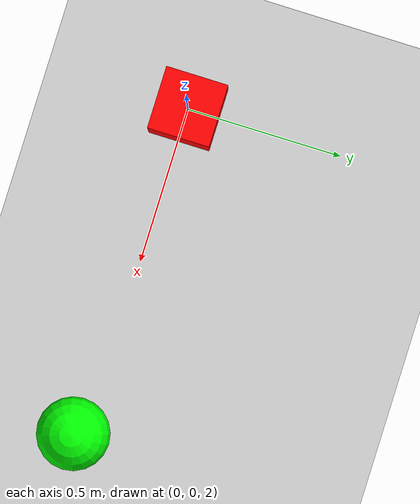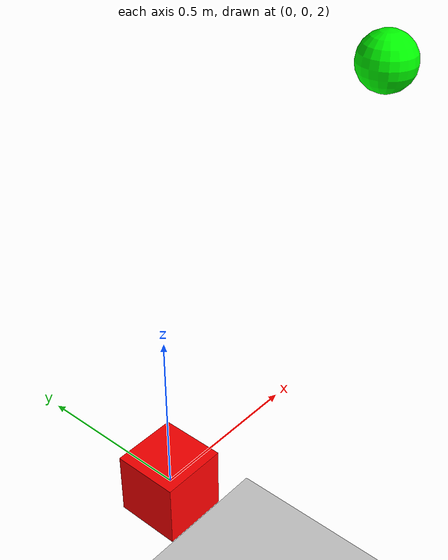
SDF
<?xml version="1.0" ?>
<sdf version="1.7">
  <world name="physics_world">
    <!-- Include the default Gazebo world with basic lighting -->
    <include>
      <uri>model://ground_plane</uri>
    </include>
    <include>
      <uri>model://sun</uri>
    </include>

    <!-- Configurable physics parameters -->
    <physics name="ode_physics" type="ode">
      <gravity>0 0 -9.8</gravity>
      <max_step_size>0.001</max_step_size>
      <real_time_factor>1.0</real_time_factor>
      <real_time_update_rate>1000</real_time_update_rate>

      <!-- ODE-specific parameters -->
      <ode>
        <solver>
          <type>quick</type>
          <iters>10</iters>
          <sor>1.3</sor>
        </solver>
        <constraints>
          <cfm>0.0</cfm>
          <erp>0.2</erp>
          <contact_max_correcting_vel>100.0</contact_max_correcting_vel>
          <contact_surface_layer>0.001</contact_surface_layer>
        </constraints>
      </ode>
    </physics>

    <!-- Example box model to test physics -->
    <model name="test_box">
      <pose>0 0 2 0 0 0</pose>
      <link name="link">
        <inertial>
          <mass>1.0</mass>
          <inertia>
            <ixx>0.166667</ixx>
            <ixy>0.0</ixy>
            <ixz>0.0</ixz>
            <iyy>0.166667</iyy>
            <iyz>0.0</iyz>
            <izz>0.166667</izz>
          </inertia>
        </inertial>
        <visual name="visual">
          <geometry>
            <box>
              <size>0.2 0.2 0.2</size>
            </box>
          </geometry>
          <material>
            <ambient>1 0 0 1</ambient>
            <diffuse>1 0 0 1</diffuse>
            <specular>1 0 0 1</specular>
          </material>
        </visual>
        <collision name="collision">
          <geometry>
            <box>
              <size>0.2 0.2 0.2</size>
            </box>
          </geometry>
        </collision>
      </link>
    </model>

    <!-- Example sphere model to test physics -->
    <model name="test_sphere">
      <pose>1 0 3 0 0 0</pose>
      <link name="link">
        <inertial>
          <mass>0.5</mass>
          <inertia>
            <ixx>0.05</ixx>
            <ixy>0.0</ixy>
            <ixz>0.0</ixz>
            <iyy>0.05</iyy>
            <iyz>0.0</iyz>
            <izz>0.05</izz>
          </inertia>
        </inertial>
        <visual name="visual">
          <geometry>
            <sphere>
              <radius>0.1</radius>
            </sphere>
          </geometry>
          <material>
            <ambient>0 1 0 1</ambient>
            <diffuse>0 1 0 1</diffuse>
            <specular>0 1 0 1</specular>
          </material>
        </visual>
        <collision name="collision">
          <geometry>
            <sphere>
              <radius>0.1</radius>
            </sphere>
          </geometry>
        </collision>
      </link>
    </model>
  </world>
</sdf>
